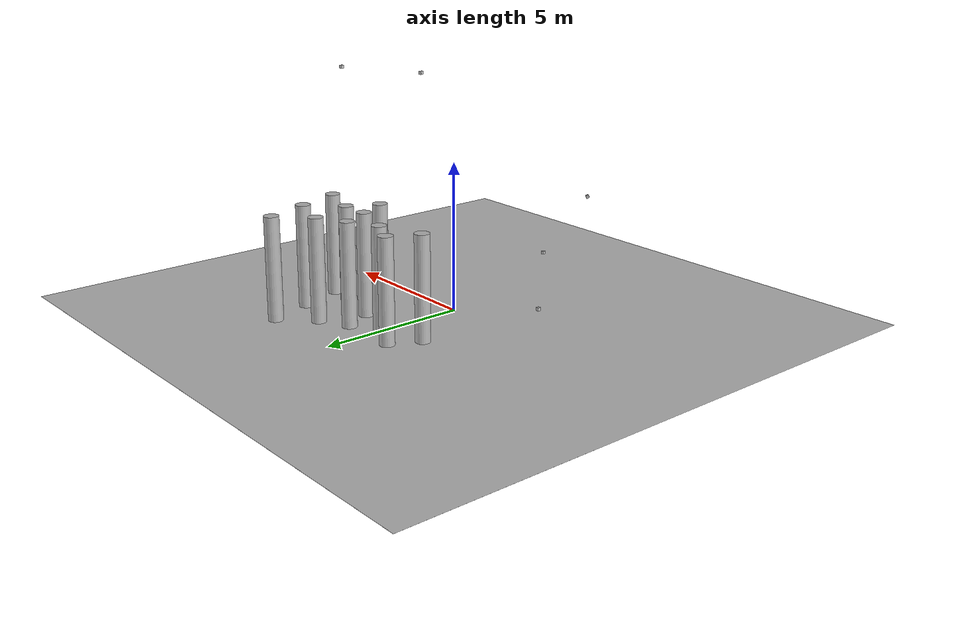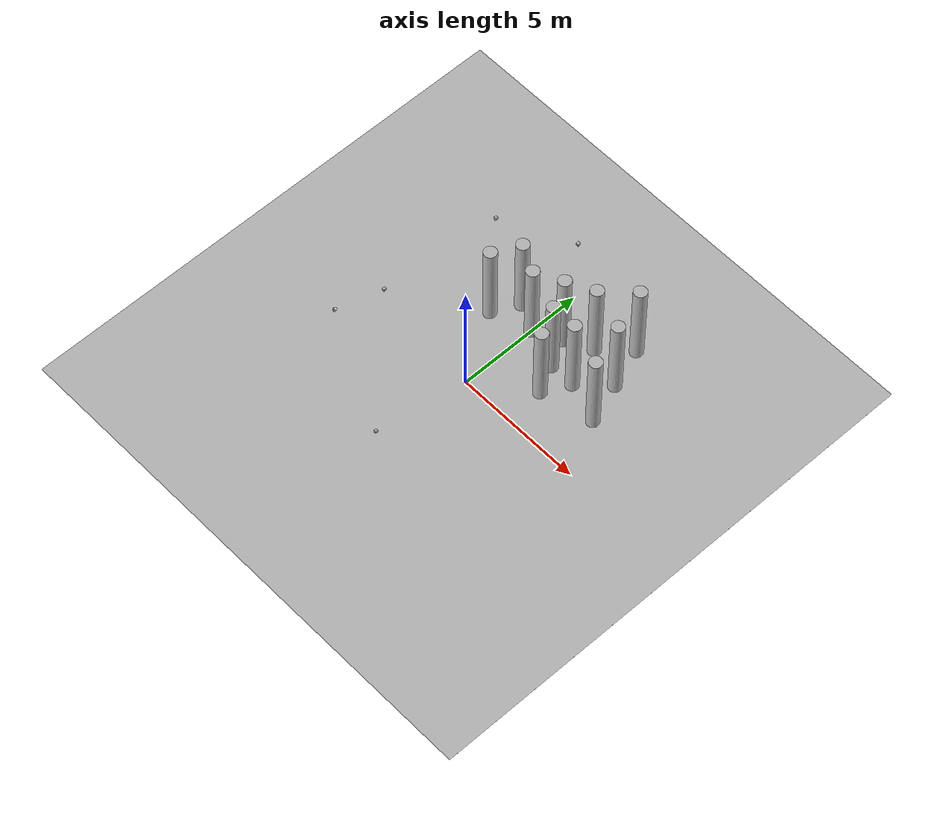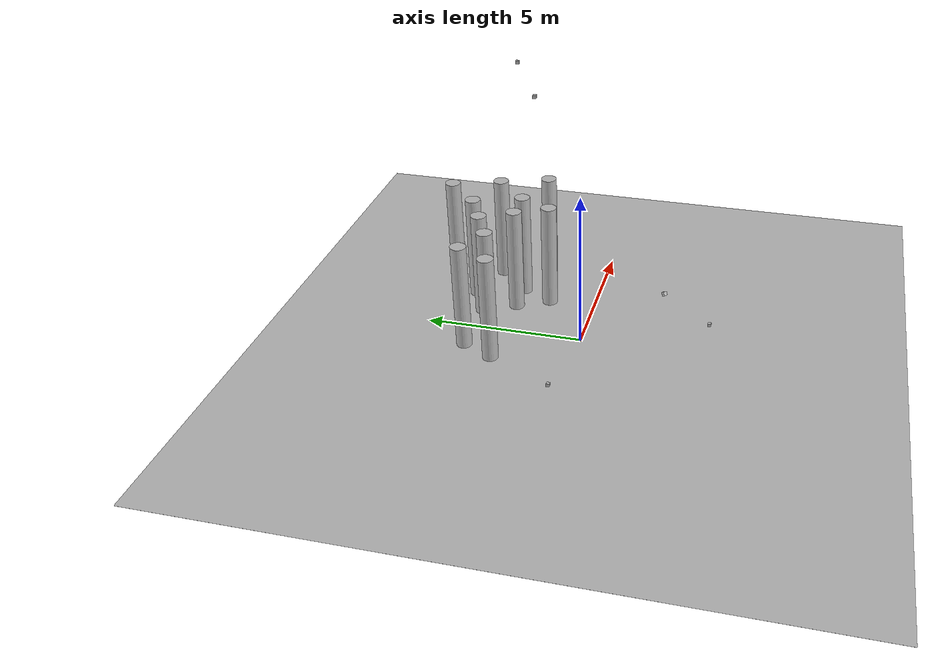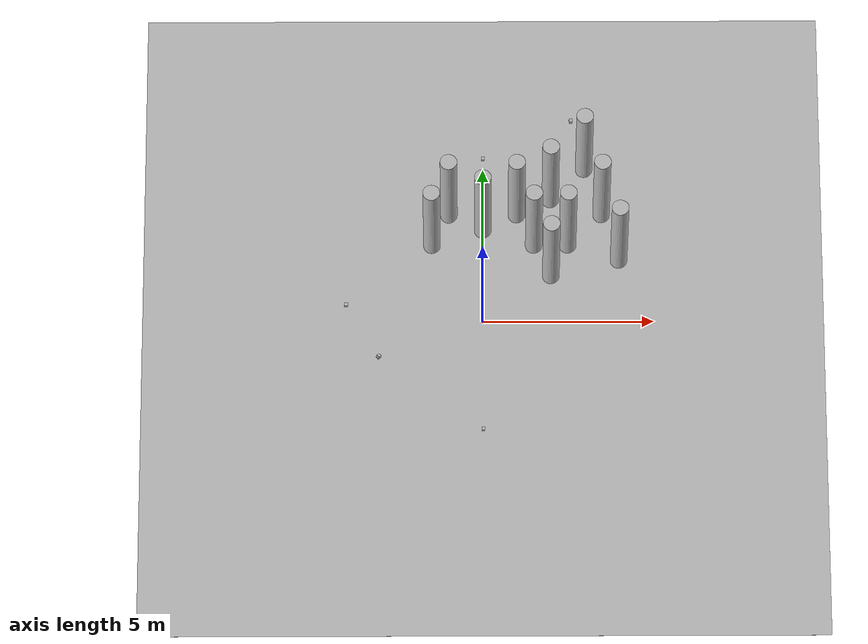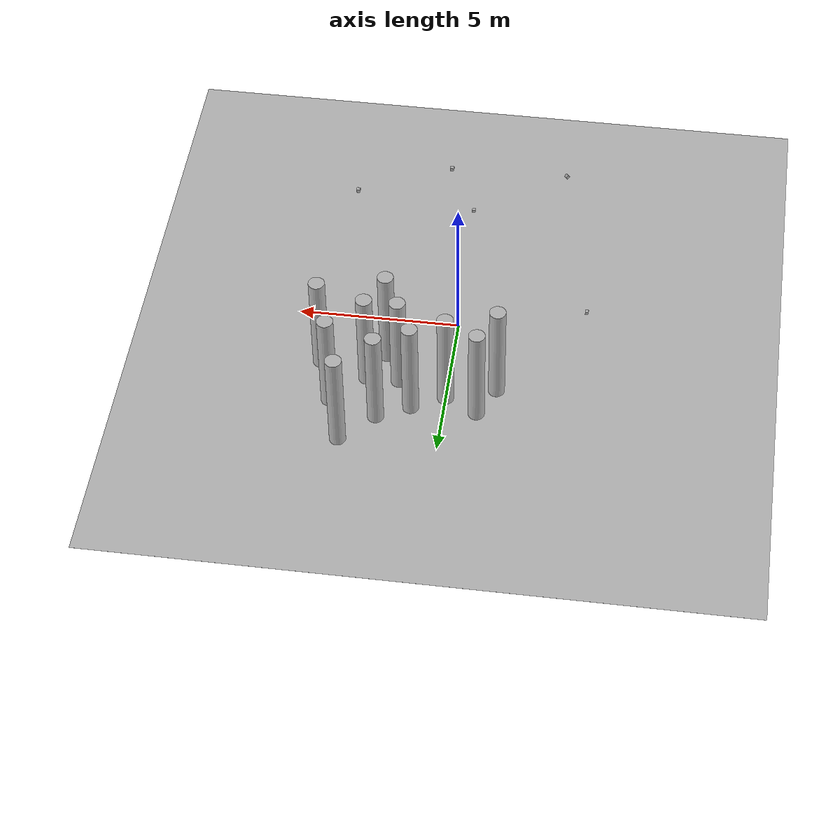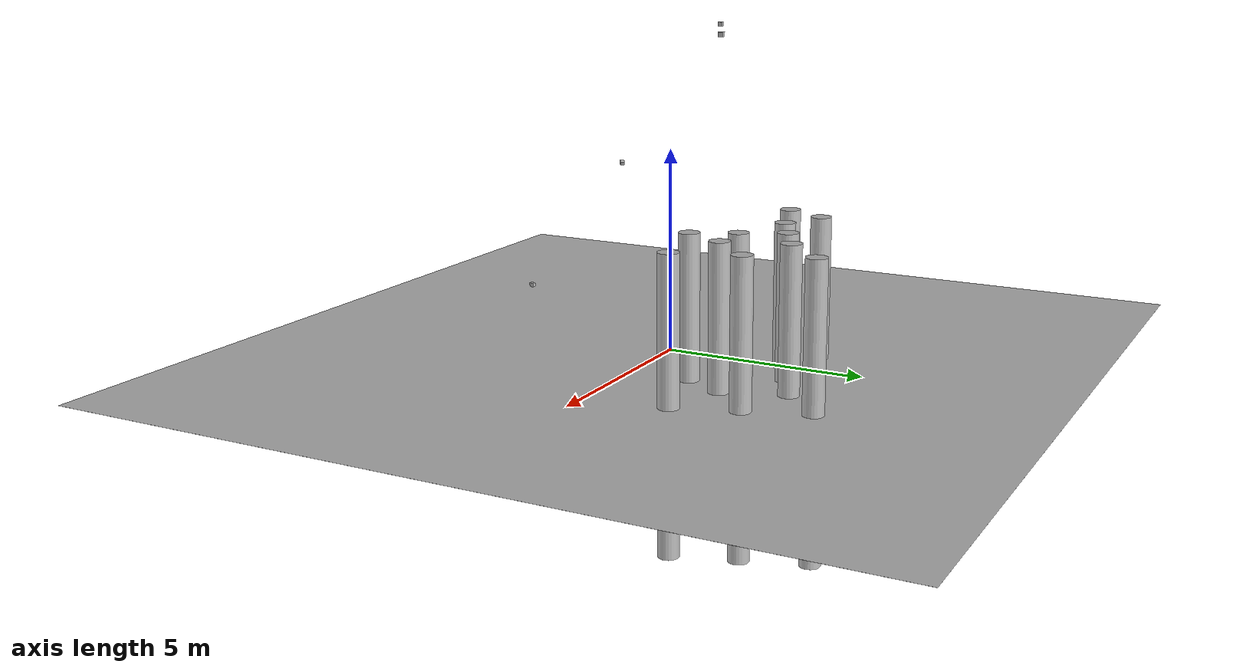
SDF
<?xml version="1.0" ?>
<?xml-model href="http://sdformat.org/schemas/root.xsd" schematypens="http://www.w3.org/2001/XMLSchema"?>
<sdf version="1.4">
  <world name="default">
    <include>
      <uri>model://scale_plane</uri>
    </include>
    <include>
      <uri>model://sun</uri>
    </include>
    <include>
      <name>cylinder_obstacle0</name>
      <pose>2.0 1.5 0 0 0 0</pose>
      <uri>model://cylinder_obstacle</uri>
    </include>
    <include>
      <name>cylinder_obstacle1</name>
      <pose>3.5 3.5 0 0 0 0</pose>
      <uri>model://cylinder_obstacle</uri>
    </include>
    <include>
      <name>cylinder_obstacle2</name>
      <pose>0.0 3.0 0 0 0 0</pose>
      <uri>model://cylinder_obstacle</uri>
    </include>
    <include>
      <name>cylinder_obstacle3</name>
      <pose>1.0 3.5 0 0 0 0</pose>
      <uri>model://cylinder_obstacle</uri>
    </include>
    <include>
      <name>cylinder_obstacle4</name>
      <pose>-1.0 3.5 0 0 0 0</pose>
      <uri>model://cylinder_obstacle</uri>
    </include>
    <include>
      <name>cylinder_obstacle5</name>
      <pose>-1.5 2.5 0 0 0 0</pose>
      <uri>model://cylinder_obstacle</uri>
    </include>
    <include>
      <name>cylinder_obstacle6</name>
      <pose>1.5 2.5 0 0 0 0</pose>
      <uri>model://cylinder_obstacle</uri>
    </include>
    <include>
      <name>cylinder_obstacle7</name>
      <pose>4.0 2.0 0 0 0 0</pose>
      <uri>model://cylinder_obstacle</uri>
    </include>
    <include>
      <name>cylinder_obstacle8</name>
      <pose>3.0 5.0 0 0 0 0</pose>
      <uri>model://cylinder_obstacle</uri>
    </include>
    <include>
      <name>cylinder_obstacle9</name>
      <pose>2.0 4.0 0 0 0 0</pose>
      <uri>model://cylinder_obstacle</uri>
    </include>
    <include>
      <name>cylinder_obstacle10</name>
      <pose>2.5 2.5 0 0 0 0</pose>
      <uri>model://cylinder_obstacle</uri>
    </include>

    <model name="camera1">
    <link name="link">
      <gravity>0</gravity>
      <pose>-4 0 1.2 0 0 0</pose> <!-- place a bit higher -->
      <inertial>
        <mass>0.1</mass>
      </inertial>
      <collision name="collision">
        <geometry>
          <box>
            <size>0.1 0.1 0.1</size>
          </box>
        </geometry>
      </collision>
      <visual name="visual">
        <geometry>
          <box>
            <size>0.1 0.1 0.1</size>
          </box>
        </geometry>
      </visual>
      <sensor name="camera1" type="camera">
        <camera>
          <horizontal_fov>1.047</horizontal_fov>
          <image>
            <width>1720</width>
            <height>1080</height>
          </image>
          <clip>
            <near>0.1</near>
            <far>100</far>
          </clip>
          <save enabled="true">
            <path>/tmp/cam1</path>
          </save>
        </camera>
        <always_on>1</always_on>
        <update_rate>15</update_rate>
        <visualize>true</visualize>
      </sensor>
    </link>
    </model>

    <model name="camera2">
    <link name="link">
      <gravity>0</gravity>
      <pose>0 1.3 8 0 1.5708 0</pose>
      <inertial>
        <mass>0.1</mass>
      </inertial>
      <collision name="collision">
        <geometry>
          <box>
            <size>0.1 0.1 0.1</size>
          </box>
        </geometry>
      </collision>
      <visual name="visual">
        <geometry>
          <box>
            <size>0.1 0.1 0.1</size>
          </box>
        </geometry>
      </visual>
      <sensor name="camera2" type="camera">
        <camera>
          <horizontal_fov>1.047</horizontal_fov>
          <image>
            <width>1720</width>
            <height>1080</height>
          </image>
          <clip>
            <near>0.1</near>
            <far>100</far>
          </clip>
          <save enabled="true">
            <path>/tmp/cam2</path>
          </save>
        </camera>
        <always_on>1</always_on>
        <update_rate>15</update_rate>
        <visualize>true</visualize>
      </sensor>
    </link>
    </model>

    <model name="camera3">
    <link name="link">
      <gravity>0</gravity>
      <pose>0 -4 1.2 0 0 1.5708</pose> <!-- place a bit higher -->
      <inertial>
        <mass>0.1</mass>
      </inertial>
      <collision name="collision">
        <geometry>
          <box>
            <size>0.1 0.1 0.1</size>
          </box>
        </geometry>
      </collision>
      <visual name="visual">
        <geometry>
          <box>
            <size>0.1 0.1 0.1</size>
          </box>
        </geometry>
      </visual>
      <sensor name="camera3" type="camera">
        <camera>
          <horizontal_fov>1.047</horizontal_fov>
          <image>
            <width>1720</width>
            <height>1080</height>
          </image>
          <clip>
            <near>0.1</near>
            <far>100</far>
          </clip>
          <save enabled="true">
            <path>/tmp/cam3</path>
          </save>
        </camera>
        <always_on>1</always_on>
        <update_rate>15</update_rate>
        <visualize>true</visualize>
      </sensor>
    </link>
    </model>

    <model name="camera4">
    <link name="link">
      <gravity>0</gravity>
      <pose>-3 -3 4 0 0.5 0.7854</pose> <!-- nice far away distance -->
      <!-- as in testing room at homeoffice -->
      <inertial>
        <mass>0.1</mass>
      </inertial>
      <collision name="collision">
        <geometry>
          <box>
            <size>0.1 0.1 0.1</size>
          </box>
        </geometry>
      </collision>
      <visual name="visual">
        <geometry>
          <box>
            <size>0.1 0.1 0.1</size>
          </box>
        </geometry>
      </visual>
      <sensor name="camera4" type="camera">
        <camera>
          <horizontal_fov>1.047</horizontal_fov>
          <image>
            <width>1720</width>
            <height>1080</height>
          </image>
          <clip>
            <near>0.1</near>
            <far>100</far>
          </clip>
          <save enabled="true">
            <path>/tmp/cam4</path>
          </save>
        </camera>
        <always_on>1</always_on>
        <update_rate>15</update_rate>
        <visualize>true</visualize>
      </sensor>
    </link>
    </model>

    <model name="camera5">
    <link name="link">
      <gravity>0</gravity>
      <pose>2.5 2.5 8 0 1.5708 0</pose>
      <inertial>
        <mass>0.1</mass>
      </inertial>
      <collision name="collision">
        <geometry>
          <box>
            <size>0.1 0.1 0.1</size>
          </box>
        </geometry>
      </collision>
      <visual name="visual">
        <geometry>
          <box>
            <size>0.1 0.1 0.1</size>
          </box>
        </geometry>
      </visual>
      <sensor name="camera5" type="camera">
        <camera>
          <horizontal_fov>1.047</horizontal_fov>
          <image>
            <width>1720</width>
            <height>1080</height>
          </image>
          <clip>
            <near>0.1</near>
            <far>100</far>
          </clip>
          <save enabled="true">
            <path>/tmp/cam5</path>
          </save>
        </camera>
        <always_on>1</always_on>
        <update_rate>15</update_rate>
        <visualize>true</visualize>
      </sensor>
    </link>
    </model>

    <!-- Only one ROS interface plugin is required per world, as any other plugin can connect a Gazebo
         topic to a ROS topic (or vise versa). -->
    <plugin name="ros_interface_plugin" filename="librotors_gazebo_ros_interface_plugin.so"/>

    <!-- coordinate system {-->
    <spherical_coordinates>
      <surface_model>EARTH_WGS84</surface_model>
      <latitude_deg>47.3667</latitude_deg>
      <longitude_deg>8.5500</longitude_deg>
      <elevation>500.0</elevation>
      <heading_deg>0</heading_deg>
    </spherical_coordinates>

    <!-- physics engine {-->
    <physics name="default_physics" default="0"  type='ode'>
      <ode>
        <solver>
          <type>quick</type>
          <iters>1000</iters>
          <sor>1.3</sor>
        </solver>
        <constraints>
          <cfm>0</cfm>
          <erp>0.2</erp>
          <contact_max_correcting_vel>100</contact_max_correcting_vel>
          <contact_surface_layer>0.001</contact_surface_layer>
        </constraints>
      </ode>
      <max_step_size>0.001</max_step_size>
      <real_time_factor>1</real_time_factor>
      <real_time_update_rate>1000</real_time_update_rate>
      <magnetic_field>6.0e-06 2.3e-05 -4.2e-05</magnetic_field>
      <gravity>0 0 -9.8</gravity>
    </physics>

    <!-- turn off shadows {-->
    <scene>
      <shadows>false</shadows>
    </scene>

  </world>
</sdf>

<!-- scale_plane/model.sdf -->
<sdf version="1.5">
  <model name="scale_plane">
    <static>true</static>
    <link name="link">
      <collision name="collision">
        <geometry>
          <box>
            <size>20 20 .001</size>
          </box>
        </geometry>
      </collision>
      <visual name="visual">
        <cast_shadows>false</cast_shadows>
        <geometry>
          <box>
            <size>20 20 .001</size>
          </box>
        </geometry>
        <material>
          <script>
            <uri>model://scale_plane/materials/scripts</uri>
            <uri>model://scale_plane/materials/textures</uri>
            <name>vrc/scale</name>
          </script>
        </material>
      </visual>
    </link>
  </model>
</sdf>

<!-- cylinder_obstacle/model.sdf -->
<sdf version="1.5">
  <model name="cylinder_obstacle">
    <static>true</static>
    <link name="link">
      <collision name="collision">
        <geometry>
          <cylinder>
            <radius>0.25</radius>
            <length>7</length>
          </cylinder>
        </geometry>
      </collision>
      <visual name="visual">
        <cast_shadows>false</cast_shadows>
        <geometry>
          <cylinder>
            <radius>0.25</radius>
            <length>7</length>
          </cylinder>
        </geometry>
        <material>
          <script>
            <uri>model://cylinder_obstacle/materials/scripts</uri>
            <uri>model://cylinder_obstacle/materials/textures</uri>
            <name>vrc/obstacle</name>
          </script>
        </material>
      </visual>
    </link>
  </model>
</sdf>
